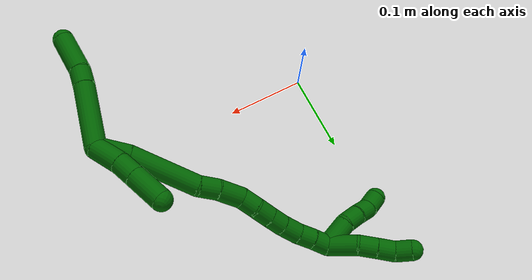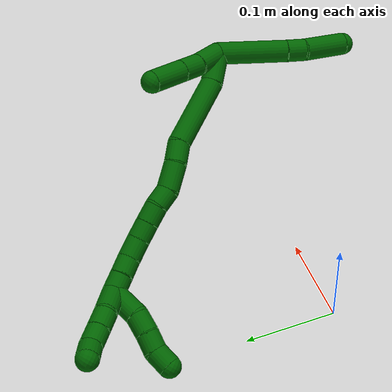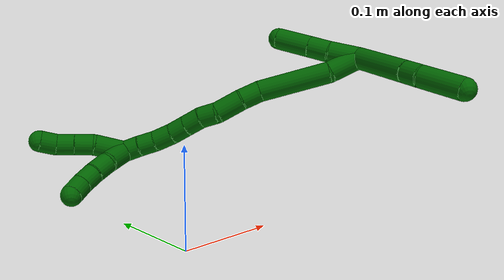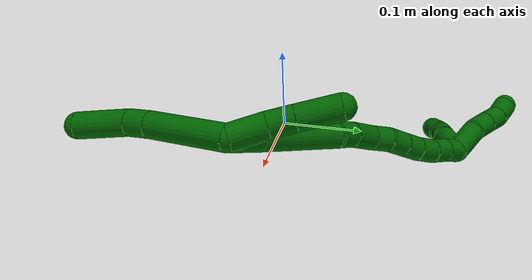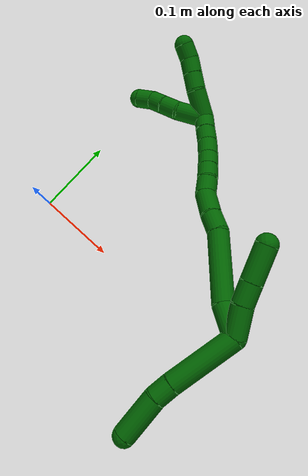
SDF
<sdf version="1.7">
 <world name="default">
  <model name="6">
   <static>0</static>
   <link name="6">
    <collision name="collision-cylinder-e_1_2_8">
     <pose>0.013841 -0.016713 -0.032857 2.67104 0.359188 1.29639</pose>
     <geometry><cylinder><radius>0.0125</radius><length>0.078753</length></cylinder></geometry>
     <surface>
      <friction><ode><mu>1.16</mu><mu2>1.16</mu2><slip1>0</slip1><slip2>0</slip2></ode></friction>
      <contact><ode><kp>1e+06</kp><kd>1</kd><max_vel>0</max_vel><min_depth>0.001</min_depth></ode></contact>
     </surface>
    </collision>
    <visual name="visual-cylinder-e_1_2_8">
     <pose>0.013841 -0.016713 -0.032857 2.67104 0.359188 1.29639</pose>
     <geometry><cylinder><radius>0.0125</radius><length>0.078753</length></cylinder></geometry>
     <material><ambient>0 0.392157 0.003922 1</ambient></material>
    </visual>
    <collision name="collision-cylinder-e_2_8_9">
     <pose>0.032161 -0.037617 -0.074525 2.69758 0.430263 1.53831</pose>
     <geometry><cylinder><radius>0.0125</radius><length>0.02147</length></cylinder></geometry>
     <surface>
      <friction><ode><mu>1.16</mu><mu2>1.16</mu2><slip1>0</slip1><slip2>0</slip2></ode></friction>
      <contact><ode><kp>1e+06</kp><kd>1</kd><max_vel>0</max_vel><min_depth>0.001</min_depth></ode></contact>
     </surface>
    </collision>
    <visual name="visual-cylinder-e_2_8_9">
     <pose>0.032161 -0.037617 -0.074525 2.69758 0.430263 1.53831</pose>
     <geometry><cylinder><radius>0.0125</radius><length>0.02147</length></cylinder></geometry>
     <material><ambient>0 0.392157 0.003922 1</ambient></material>
    </visual>
    <collision name="collision-cylinder-e_3_9_6">
     <pose>0.051114 -0.049249 -0.102164 2.76526 0.620751 2.07006</pose>
     <geometry><cylinder><radius>0.0125</radius><length>0.049777</length></cylinder></geometry>
     <surface>
      <friction><ode><mu>1.16</mu><mu2>1.16</mu2><slip1>0</slip1><slip2>0</slip2></ode></friction>
      <contact><ode><kp>1e+06</kp><kd>1</kd><max_vel>0</max_vel><min_depth>0.001</min_depth></ode></contact>
     </surface>
    </collision>
    <visual name="visual-cylinder-e_3_9_6">
     <pose>0.051114 -0.049249 -0.102164 2.76526 0.620751 2.07006</pose>
     <geometry><cylinder><radius>0.0125</radius><length>0.049777</length></cylinder></geometry>
     <material><ambient>0 0.392157 0.003922 1</ambient></material>
    </visual>
    <collision name="collision-cylinder-e_1_2_10">
     <pose>-0.015185 0.001934 0.008061 -0.235472 -1.0711 0.140148</pose>
     <geometry><cylinder><radius>0.0125</radius><length>0.034601</length></cylinder></geometry>
     <surface>
      <friction><ode><mu>1.16</mu><mu2>1.16</mu2><slip1>0</slip1><slip2>0</slip2></ode></friction>
      <contact><ode><kp>1e+06</kp><kd>1</kd><max_vel>0</max_vel><min_depth>0.001</min_depth></ode></contact>
     </surface>
    </collision>
    <visual name="visual-cylinder-e_1_2_10">
     <pose>-0.015185 0.001934 0.008061 -0.235472 -1.0711 0.140148</pose>
     <geometry><cylinder><radius>0.0125</radius><length>0.034601</length></cylinder></geometry>
     <material><ambient>0 0.392157 0.003922 1</ambient></material>
    </visual>
    <collision name="collision-cylinder-e_2_10_11">
     <pose>-0.04011 0.005812 0.023356 -0.262578 -0.91519 0.129874</pose>
     <geometry><cylinder><radius>0.0125</radius><length>0.024574</length></cylinder></geometry>
     <surface>
      <friction><ode><mu>1.16</mu><mu2>1.16</mu2><slip1>0</slip1><slip2>0</slip2></ode></friction>
      <contact><ode><kp>1e+06</kp><kd>1</kd><max_vel>0</max_vel><min_depth>0.001</min_depth></ode></contact>
     </surface>
    </collision>
    <visual name="visual-cylinder-e_2_10_11">
     <pose>-0.04011 0.005812 0.023356 -0.262578 -0.91519 0.129874</pose>
     <geometry><cylinder><radius>0.0125</radius><length>0.024574</length></cylinder></geometry>
     <material><ambient>0 0.392157 0.003922 1</ambient></material>
    </visual>
    <collision name="collision-cylinder-e_3_11_5">
     <pose>-0.065985 0.011121 0.042631 -0.272452 -0.911572 0.13419</pose>
     <geometry><cylinder><radius>0.0125</radius><length>0.040825</length></cylinder></geometry>
     <surface>
      <friction><ode><mu>1.16</mu><mu2>1.16</mu2><slip1>0</slip1><slip2>0</slip2></ode></friction>
      <contact><ode><kp>1e+06</kp><kd>1</kd><max_vel>0</max_vel><min_depth>0.001</min_depth></ode></contact>
     </surface>
    </collision>
    <visual name="visual-cylinder-e_3_11_5">
     <pose>-0.065985 0.011121 0.042631 -0.272452 -0.911572 0.13419</pose>
     <geometry><cylinder><radius>0.0125</radius><length>0.040825</length></cylinder></geometry>
     <material><ambient>0 0.392157 0.003922 1</ambient></material>
    </visual>
    <collision name="collision-cylinder-e_1_2_12">
     <pose>-0.016888 0.006942 -0.004345 -2.13003 -1.11927 1.69368</pose>
     <geometry><cylinder><radius>0.0125</radius><length>0.037537</length></cylinder></geometry>
     <surface>
      <friction><ode><mu>1.16</mu><mu2>1.16</mu2><slip1>0</slip1><slip2>0</slip2></ode></friction>
      <contact><ode><kp>1e+06</kp><kd>1</kd><max_vel>0</max_vel><min_depth>0.001</min_depth></ode></contact>
     </surface>
    </collision>
    <visual name="visual-cylinder-e_1_2_12">
     <pose>-0.016888 0.006942 -0.004345 -2.13003 -1.11927 1.69368</pose>
     <geometry><cylinder><radius>0.0125</radius><length>0.037537</length></cylinder></geometry>
     <material><ambient>0 0.392157 0.003922 1</ambient></material>
    </visual>
    <collision name="collision-cylinder-e_2_12_13">
     <pose>-0.072191 0.029753 -0.006827 -1.45394 -1.17664 1.07109</pose>
     <geometry><cylinder><radius>0.0125</radius><length>0.083213</length></cylinder></geometry>
     <surface>
      <friction><ode><mu>1.16</mu><mu2>1.16</mu2><slip1>0</slip1><slip2>0</slip2></ode></friction>
      <contact><ode><kp>1e+06</kp><kd>1</kd><max_vel>0</max_vel><min_depth>0.001</min_depth></ode></contact>
     </surface>
    </collision>
    <visual name="visual-cylinder-e_2_12_13">
     <pose>-0.072191 0.029753 -0.006827 -1.45394 -1.17664 1.07109</pose>
     <geometry><cylinder><radius>0.0125</radius><length>0.083213</length></cylinder></geometry>
     <material><ambient>0 0.392157 0.003922 1</ambient></material>
    </visual>
    <collision name="collision-cylinder-e_3_13_14">
     <pose>-0.121431 0.049512 -0.00785 -2.20912 -1.15001 1.82104</pose>
     <geometry><cylinder><radius>0.0125</radius><length>0.023716</length></cylinder></geometry>
     <surface>
      <friction><ode><mu>1.16</mu><mu2>1.16</mu2><slip1>0</slip1><slip2>0</slip2></ode></friction>
      <contact><ode><kp>1e+06</kp><kd>1</kd><max_vel>0</max_vel><min_depth>0.001</min_depth></ode></contact>
     </surface>
    </collision>
    <visual name="visual-cylinder-e_3_13_14">
     <pose>-0.121431 0.049512 -0.00785 -2.20912 -1.15001 1.82104</pose>
     <geometry><cylinder><radius>0.0125</radius><length>0.023716</length></cylinder></geometry>
     <material><ambient>0 0.392157 0.003922 1</ambient></material>
    </visual>
    <collision name="collision-cylinder-e_4_14_15">
     <pose>-0.14564 0.060717 -0.01367 -1.95228 -1.03862 1.40343</pose>
     <geometry><cylinder><radius>0.0125</radius><length>0.031066</length></cylinder></geometry>
     <surface>
      <friction><ode><mu>1.16</mu><mu2>1.16</mu2><slip1>0</slip1><slip2>0</slip2></ode></friction>
      <contact><ode><kp>1e+06</kp><kd>1</kd><max_vel>0</max_vel><min_depth>0.001</min_depth></ode></contact>
     </surface>
    </collision>
    <visual name="visual-cylinder-e_4_14_15">
     <pose>-0.14564 0.060717 -0.01367 -1.95228 -1.03862 1.40343</pose>
     <geometry><cylinder><radius>0.0125</radius><length>0.031066</length></cylinder></geometry>
     <material><ambient>0 0.392157 0.003922 1</ambient></material>
    </visual>
    <collision name="collision-cylinder-e_5_15_16">
     <pose>-0.167934 0.073181 -0.015004 -1.26936 -1.02658 0.786811</pose>
     <geometry><cylinder><radius>0.0125</radius><length>0.020829</length></cylinder></geometry>
     <surface>
      <friction><ode><mu>1.16</mu><mu2>1.16</mu2><slip1>0</slip1><slip2>0</slip2></ode></friction>
      <contact><ode><kp>1e+06</kp><kd>1</kd><max_vel>0</max_vel><min_depth>0.001</min_depth></ode></contact>
     </surface>
    </collision>
    <visual name="visual-cylinder-e_5_15_16">
     <pose>-0.167934 0.073181 -0.015004 -1.26936 -1.02658 0.786811</pose>
     <geometry><cylinder><radius>0.0125</radius><length>0.020829</length></cylinder></geometry>
     <material><ambient>0 0.392157 0.003922 1</ambient></material>
    </visual>
    <collision name="collision-cylinder-e_6_16_17">
     <pose>-0.184911 0.084642 -0.013484 -1.5837 -0.906851 0.917051</pose>
     <geometry><cylinder><radius>0.0125</radius><length>0.020487</length></cylinder></geometry>
     <surface>
      <friction><ode><mu>1.16</mu><mu2>1.16</mu2><slip1>0</slip1><slip2>0</slip2></ode></friction>
      <contact><ode><kp>1e+06</kp><kd>1</kd><max_vel>0</max_vel><min_depth>0.001</min_depth></ode></contact>
     </surface>
    </collision>
    <visual name="visual-cylinder-e_6_16_17">
     <pose>-0.184911 0.084642 -0.013484 -1.5837 -0.906851 0.917051</pose>
     <geometry><cylinder><radius>0.0125</radius><length>0.020487</length></cylinder></geometry>
     <material><ambient>0 0.392157 0.003922 1</ambient></material>
    </visual>
    <collision name="collision-cylinder-e_7_17_18">
     <pose>-0.200974 0.097064 -0.01379 -1.60754 -0.917923 0.94744</pose>
     <geometry><cylinder><radius>0.0125</radius><length>0.020131</length></cylinder></geometry>
     <surface>
      <friction><ode><mu>1.16</mu><mu2>1.16</mu2><slip1>0</slip1><slip2>0</slip2></ode></friction>
      <contact><ode><kp>1e+06</kp><kd>1</kd><max_vel>0</max_vel><min_depth>0.001</min_depth></ode></contact>
     </surface>
    </collision>
    <visual name="visual-cylinder-e_7_17_18">
     <pose>-0.200974 0.097064 -0.01379 -1.60754 -0.917923 0.94744</pose>
     <geometry><cylinder><radius>0.0125</radius><length>0.020131</length></cylinder></geometry>
     <material><ambient>0 0.392157 0.003922 1</ambient></material>
    </visual>
    <collision name="collision-cylinder-e_8_18_19">
     <pose>-0.218792 0.109027 -0.014216 -1.60512 -1.03315 1.0629</pose>
     <geometry><cylinder><radius>0.0125</radius><length>0.022872</length></cylinder></geometry>
     <surface>
      <friction><ode><mu>1.16</mu><mu2>1.16</mu2><slip1>0</slip1><slip2>0</slip2></ode></friction>
      <contact><ode><kp>1e+06</kp><kd>1</kd><max_vel>0</max_vel><min_depth>0.001</min_depth></ode></contact>
     </surface>
    </collision>
    <visual name="visual-cylinder-e_8_18_19">
     <pose>-0.218792 0.109027 -0.014216 -1.60512 -1.03315 1.0629</pose>
     <geometry><cylinder><radius>0.0125</radius><length>0.022872</length></cylinder></geometry>
     <material><ambient>0 0.392157 0.003922 1</ambient></material>
    </visual>
    <collision name="collision-cylinder-e_9_19_20">
     <pose>-0.237932 0.118586 -0.014675 -1.64032 -1.1914 1.25683</pose>
     <geometry><cylinder><radius>0.0125</radius><length>0.020061</length></cylinder></geometry>
     <surface>
      <friction><ode><mu>1.16</mu><mu2>1.16</mu2><slip1>0</slip1><slip2>0</slip2></ode></friction>
      <contact><ode><kp>1e+06</kp><kd>1</kd><max_vel>0</max_vel><min_depth>0.001</min_depth></ode></contact>
     </surface>
    </collision>
    <visual name="visual-cylinder-e_9_19_20">
     <pose>-0.237932 0.118586 -0.014675 -1.64032 -1.1914 1.25683</pose>
     <geometry><cylinder><radius>0.0125</radius><length>0.020061</length></cylinder></geometry>
     <material><ambient>0 0.392157 0.003922 1</ambient></material>
    </visual>
    <collision name="collision-cylinder-e_10_20_1">
     <pose>-0.256297 0.126646 -0.015181 -1.62774 -1.12167 1.17362</pose>
     <geometry><cylinder><radius>0.0125</radius><length>0.020088</length></cylinder></geometry>
     <surface>
      <friction><ode><mu>1.16</mu><mu2>1.16</mu2><slip1>0</slip1><slip2>0</slip2></ode></friction>
      <contact><ode><kp>1e+06</kp><kd>1</kd><max_vel>0</max_vel><min_depth>0.001</min_depth></ode></contact>
     </surface>
    </collision>
    <visual name="visual-cylinder-e_10_20_1">
     <pose>-0.256297 0.126646 -0.015181 -1.62774 -1.12167 1.17362</pose>
     <geometry><cylinder><radius>0.0125</radius><length>0.020088</length></cylinder></geometry>
     <material><ambient>0 0.392157 0.003922 1</ambient></material>
    </visual>
    <collision name="collision-cylinder-e_1_1_21">
     <pose>-0.283029 0.126435 -0.0138 1.22782 -1.30328 -0.986523</pose>
     <geometry><cylinder><radius>0.0125</radius><length>0.036671</length></cylinder></geometry>
     <surface>
      <friction><ode><mu>1.16</mu><mu2>1.16</mu2><slip1>0</slip1><slip2>0</slip2></ode></friction>
      <contact><ode><kp>1e+06</kp><kd>1</kd><max_vel>0</max_vel><min_depth>0.001</min_depth></ode></contact>
     </surface>
    </collision>
    <visual name="visual-cylinder-e_1_1_21">
     <pose>-0.283029 0.126435 -0.0138 1.22782 -1.30328 -0.986523</pose>
     <geometry><cylinder><radius>0.0125</radius><length>0.036671</length></cylinder></geometry>
     <material><ambient>0 0.392157 0.003922 1</ambient></material>
    </visual>
    <collision name="collision-cylinder-e_2_21_22">
     <pose>-0.311693 0.122131 -0.011508 -0.375217 -1.50615 0.35221</pose>
     <geometry><cylinder><radius>0.0125</radius><length>0.022006</length></cylinder></geometry>
     <surface>
      <friction><ode><mu>1.16</mu><mu2>1.16</mu2><slip1>0</slip1><slip2>0</slip2></ode></friction>
      <contact><ode><kp>1e+06</kp><kd>1</kd><max_vel>0</max_vel><min_depth>0.001</min_depth></ode></contact>
     </surface>
    </collision>
    <visual name="visual-cylinder-e_2_21_22">
     <pose>-0.311693 0.122131 -0.011508 -0.375217 -1.50615 0.35221</pose>
     <geometry><cylinder><radius>0.0125</radius><length>0.022006</length></cylinder></geometry>
     <material><ambient>0 0.392157 0.003922 1</ambient></material>
    </visual>
    <collision name="collision-cylinder-e_3_22_23">
     <pose>-0.333293 0.12291 -0.010225 -0.694564 -1.4947 0.647228</pose>
     <geometry><cylinder><radius>0.0125</radius><length>0.021301</length></cylinder></geometry>
     <surface>
      <friction><ode><mu>1.16</mu><mu2>1.16</mu2><slip1>0</slip1><slip2>0</slip2></ode></friction>
      <contact><ode><kp>1e+06</kp><kd>1</kd><max_vel>0</max_vel><min_depth>0.001</min_depth></ode></contact>
     </surface>
    </collision>
    <visual name="visual-cylinder-e_3_22_23">
     <pose>-0.333293 0.12291 -0.010225 -0.694564 -1.4947 0.647228</pose>
     <geometry><cylinder><radius>0.0125</radius><length>0.021301</length></cylinder></geometry>
     <material><ambient>0 0.392157 0.003922 1</ambient></material>
    </visual>
    <collision name="collision-cylinder-e_4_23_4">
     <pose>-0.3535 0.120555 -0.009434 1.51199 -1.27921 -1.22336</pose>
     <geometry><cylinder><radius>0.0125</radius><length>0.020021</length></cylinder></geometry>
     <surface>
      <friction><ode><mu>1.16</mu><mu2>1.16</mu2><slip1>0</slip1><slip2>0</slip2></ode></friction>
      <contact><ode><kp>1e+06</kp><kd>1</kd><max_vel>0</max_vel><min_depth>0.001</min_depth></ode></contact>
     </surface>
    </collision>
    <visual name="visual-cylinder-e_4_23_4">
     <pose>-0.3535 0.120555 -0.009434 1.51199 -1.27921 -1.22336</pose>
     <geometry><cylinder><radius>0.0125</radius><length>0.020021</length></cylinder></geometry>
     <material><ambient>0 0.392157 0.003922 1</ambient></material>
    </visual>
    <collision name="collision-cylinder-e_1_1_24">
     <pose>-0.275339 0.125311 -0.029638 2.76074 -0.578432 -1.99192</pose>
     <geometry><cylinder><radius>0.0125</radius><length>0.036557</length></cylinder></geometry>
     <surface>
      <friction><ode><mu>1.16</mu><mu2>1.16</mu2><slip1>0</slip1><slip2>0</slip2></ode></friction>
      <contact><ode><kp>1e+06</kp><kd>1</kd><max_vel>0</max_vel><min_depth>0.001</min_depth></ode></contact>
     </surface>
    </collision>
    <visual name="visual-cylinder-e_1_1_24">
     <pose>-0.275339 0.125311 -0.029638 2.76074 -0.578432 -1.99192</pose>
     <geometry><cylinder><radius>0.0125</radius><length>0.036557</length></cylinder></geometry>
     <material><ambient>0 0.392157 0.003922 1</ambient></material>
    </visual>
    <collision name="collision-cylinder-e_2_24_25">
     <pose>-0.292808 0.119246 -0.052111 3.09614 -0.734882 -3.02364</pose>
     <geometry><cylinder><radius>0.0125</radius><length>0.022302</length></cylinder></geometry>
     <surface>
      <friction><ode><mu>1.16</mu><mu2>1.16</mu2><slip1>0</slip1><slip2>0</slip2></ode></friction>
      <contact><ode><kp>1e+06</kp><kd>1</kd><max_vel>0</max_vel><min_depth>0.001</min_depth></ode></contact>
     </surface>
    </collision>
    <visual name="visual-cylinder-e_2_24_25">
     <pose>-0.292808 0.119246 -0.052111 3.09614 -0.734882 -3.02364</pose>
     <geometry><cylinder><radius>0.0125</radius><length>0.022302</length></cylinder></geometry>
     <material><ambient>0 0.392157 0.003922 1</ambient></material>
    </visual>
    <collision name="collision-cylinder-e_3_25_26">
     <pose>-0.307028 0.119827 -0.067877 -3.01472 -0.728158 2.81125</pose>
     <geometry><cylinder><radius>0.0125</radius><length>0.020264</length></cylinder></geometry>
     <surface>
      <friction><ode><mu>1.16</mu><mu2>1.16</mu2><slip1>0</slip1><slip2>0</slip2></ode></friction>
      <contact><ode><kp>1e+06</kp><kd>1</kd><max_vel>0</max_vel><min_depth>0.001</min_depth></ode></contact>
     </surface>
    </collision>
    <visual name="visual-cylinder-e_3_25_26">
     <pose>-0.307028 0.119827 -0.067877 -3.01472 -0.728158 2.81125</pose>
     <geometry><cylinder><radius>0.0125</radius><length>0.020264</length></cylinder></geometry>
     <material><ambient>0 0.392157 0.003922 1</ambient></material>
    </visual>
    <collision name="collision-cylinder-e_4_26_3">
     <pose>-0.318786 0.119427 -0.084432 2.9929 -0.501159 -2.57524</pose>
     <geometry><cylinder><radius>0.0125</radius><length>0.020877</length></cylinder></geometry>
     <surface>
      <friction><ode><mu>1.16</mu><mu2>1.16</mu2><slip1>0</slip1><slip2>0</slip2></ode></friction>
      <contact><ode><kp>1e+06</kp><kd>1</kd><max_vel>0</max_vel><min_depth>0.001</min_depth></ode></contact>
     </surface>
    </collision>
    <visual name="visual-cylinder-e_4_26_3">
     <pose>-0.318786 0.119427 -0.084432 2.9929 -0.501159 -2.57524</pose>
     <geometry><cylinder><radius>0.0125</radius><length>0.020877</length></cylinder></geometry>
     <material><ambient>0 0.392157 0.003922 1</ambient></material>
    </visual>
    <collision name="collision-sphere-3">
     <pose>-0.323801 0.118071 -0.093486 0 -0 0</pose>
     <geometry><sphere><radius>0.0125</radius></sphere></geometry>
     <surface>
      <friction><ode><mu>1.16</mu><mu2>1.16</mu2><slip1>0</slip1><slip2>0</slip2></ode></friction>
      <contact><ode><kp>1e+06</kp><kd>1</kd><max_vel>0</max_vel><min_depth>0.001</min_depth></ode></contact>
     </surface>
    </collision>
    <visual name="visual-sphere-3">
     <pose>-0.323801 0.118071 -0.093486 0 -0 0</pose>
     <geometry><sphere><radius>0.0125</radius></sphere></geometry>
     <material><ambient>0 0.392157 0.003922 1</ambient></material>
    </visual>
    <collision name="collision-sphere-26">
     <pose>-0.313771 0.120784 -0.075379 0 -0 0</pose>
     <geometry><sphere><radius>0.0125</radius></sphere></geometry>
     <surface>
      <friction><ode><mu>1.16</mu><mu2>1.16</mu2><slip1>0</slip1><slip2>0</slip2></ode></friction>
      <contact><ode><kp>1e+06</kp><kd>1</kd><max_vel>0</max_vel><min_depth>0.001</min_depth></ode></contact>
     </surface>
    </collision>
    <visual name="visual-sphere-26">
     <pose>-0.313771 0.120784 -0.075379 0 -0 0</pose>
     <geometry><sphere><radius>0.0125</radius></sphere></geometry>
     <material><ambient>0 0.392157 0.003922 1</ambient></material>
    </visual>
    <collision name="collision-sphere-25">
     <pose>-0.300285 0.11887 -0.060375 0 -0 0</pose>
     <geometry><sphere><radius>0.0125</radius></sphere></geometry>
     <surface>
      <friction><ode><mu>1.16</mu><mu2>1.16</mu2><slip1>0</slip1><slip2>0</slip2></ode></friction>
      <contact><ode><kp>1e+06</kp><kd>1</kd><max_vel>0</max_vel><min_depth>0.001</min_depth></ode></contact>
     </surface>
    </collision>
    <visual name="visual-sphere-25">
     <pose>-0.300285 0.11887 -0.060375 0 -0 0</pose>
     <geometry><sphere><radius>0.0125</radius></sphere></geometry>
     <material><ambient>0 0.392157 0.003922 1</ambient></material>
    </visual>
    <collision name="collision-sphere-24">
     <pose>-0.285332 0.119622 -0.043846 0 -0 0</pose>
     <geometry><sphere><radius>0.0125</radius></sphere></geometry>
     <surface>
      <friction><ode><mu>1.16</mu><mu2>1.16</mu2><slip1>0</slip1><slip2>0</slip2></ode></friction>
      <contact><ode><kp>1e+06</kp><kd>1</kd><max_vel>0</max_vel><min_depth>0.001</min_depth></ode></contact>
     </surface>
    </collision>
    <visual name="visual-sphere-24">
     <pose>-0.285332 0.119622 -0.043846 0 -0 0</pose>
     <geometry><sphere><radius>0.0125</radius></sphere></geometry>
     <material><ambient>0 0.392157 0.003922 1</ambient></material>
    </visual>
    <collision name="collision-sphere-4">
     <pose>-0.363088 0.117683 -0.009264 0 -0 0</pose>
     <geometry><sphere><radius>0.0125</radius></sphere></geometry>
     <surface>
      <friction><ode><mu>1.16</mu><mu2>1.16</mu2><slip1>0</slip1><slip2>0</slip2></ode></friction>
      <contact><ode><kp>1e+06</kp><kd>1</kd><max_vel>0</max_vel><min_depth>0.001</min_depth></ode></contact>
     </surface>
    </collision>
    <visual name="visual-sphere-4">
     <pose>-0.363088 0.117683 -0.009264 0 -0 0</pose>
     <geometry><sphere><radius>0.0125</radius></sphere></geometry>
     <material><ambient>0 0.392157 0.003922 1</ambient></material>
    </visual>
    <collision name="collision-sphere-23">
     <pose>-0.343912 0.123428 -0.009603 0 -0 0</pose>
     <geometry><sphere><radius>0.0125</radius></sphere></geometry>
     <surface>
      <friction><ode><mu>1.16</mu><mu2>1.16</mu2><slip1>0</slip1><slip2>0</slip2></ode></friction>
      <contact><ode><kp>1e+06</kp><kd>1</kd><max_vel>0</max_vel><min_depth>0.001</min_depth></ode></contact>
     </surface>
    </collision>
    <visual name="visual-sphere-23">
     <pose>-0.343912 0.123428 -0.009603 0 -0 0</pose>
     <geometry><sphere><radius>0.0125</radius></sphere></geometry>
     <material><ambient>0 0.392157 0.003922 1</ambient></material>
    </visual>
    <collision name="collision-sphere-22">
     <pose>-0.322673 0.122392 -0.010847 0 -0 0</pose>
     <geometry><sphere><radius>0.0125</radius></sphere></geometry>
     <surface>
      <friction><ode><mu>1.16</mu><mu2>1.16</mu2><slip1>0</slip1><slip2>0</slip2></ode></friction>
      <contact><ode><kp>1e+06</kp><kd>1</kd><max_vel>0</max_vel><min_depth>0.001</min_depth></ode></contact>
     </surface>
    </collision>
    <visual name="visual-sphere-22">
     <pose>-0.322673 0.122392 -0.010847 0 -0 0</pose>
     <geometry><sphere><radius>0.0125</radius></sphere></geometry>
     <material><ambient>0 0.392157 0.003922 1</ambient></material>
    </visual>
    <collision name="collision-sphere-21">
     <pose>-0.300712 0.121871 -0.01217 0 -0 0</pose>
     <geometry><sphere><radius>0.0125</radius></sphere></geometry>
     <surface>
      <friction><ode><mu>1.16</mu><mu2>1.16</mu2><slip1>0</slip1><slip2>0</slip2></ode></friction>
      <contact><ode><kp>1e+06</kp><kd>1</kd><max_vel>0</max_vel><min_depth>0.001</min_depth></ode></contact>
     </surface>
    </collision>
    <visual name="visual-sphere-21">
     <pose>-0.300712 0.121871 -0.01217 0 -0 0</pose>
     <geometry><sphere><radius>0.0125</radius></sphere></geometry>
     <material><ambient>0 0.392157 0.003922 1</ambient></material>
    </visual>
    <collision name="collision-sphere-1">
     <pose>-0.265346 0.131 -0.01543 0 -0 0</pose>
     <geometry><sphere><radius>0.0125</radius></sphere></geometry>
     <surface>
      <friction><ode><mu>1.16</mu><mu2>1.16</mu2><slip1>0</slip1><slip2>0</slip2></ode></friction>
      <contact><ode><kp>1e+06</kp><kd>1</kd><max_vel>0</max_vel><min_depth>0.001</min_depth></ode></contact>
     </surface>
    </collision>
    <visual name="visual-sphere-1">
     <pose>-0.265346 0.131 -0.01543 0 -0 0</pose>
     <geometry><sphere><radius>0.0125</radius></sphere></geometry>
     <material><ambient>0 0.392157 0.003922 1</ambient></material>
    </visual>
    <collision name="collision-sphere-11">
     <pose>-0.04985 0.007757 0.03059 0 -0 0</pose>
     <geometry><sphere><radius>0.0125</radius></sphere></geometry>
     <surface>
      <friction><ode><mu>1.16</mu><mu2>1.16</mu2><slip1>0</slip1><slip2>0</slip2></ode></friction>
      <contact><ode><kp>1e+06</kp><kd>1</kd><max_vel>0</max_vel><min_depth>0.001</min_depth></ode></contact>
     </surface>
    </collision>
    <visual name="visual-sphere-11">
     <pose>-0.04985 0.007757 0.03059 0 -0 0</pose>
     <geometry><sphere><radius>0.0125</radius></sphere></geometry>
     <material><ambient>0 0.392157 0.003922 1</ambient></material>
    </visual>
    <collision name="collision-sphere-10">
     <pose>-0.03037 0.003868 0.016122 0 -0 0</pose>
     <geometry><sphere><radius>0.0125</radius></sphere></geometry>
     <surface>
      <friction><ode><mu>1.16</mu><mu2>1.16</mu2><slip1>0</slip1><slip2>0</slip2></ode></friction>
      <contact><ode><kp>1e+06</kp><kd>1</kd><max_vel>0</max_vel><min_depth>0.001</min_depth></ode></contact>
     </surface>
    </collision>
    <visual name="visual-sphere-10">
     <pose>-0.03037 0.003868 0.016122 0 -0 0</pose>
     <geometry><sphere><radius>0.0125</radius></sphere></geometry>
     <material><ambient>0 0.392157 0.003922 1</ambient></material>
    </visual>
    <collision name="collision-sphere-6">
     <pose>0.065591 -0.056689 -0.120993 0 -0 0</pose>
     <geometry><sphere><radius>0.0125</radius></sphere></geometry>
     <surface>
      <friction><ode><mu>1.16</mu><mu2>1.16</mu2><slip1>0</slip1><slip2>0</slip2></ode></friction>
      <contact><ode><kp>1e+06</kp><kd>1</kd><max_vel>0</max_vel><min_depth>0.001</min_depth></ode></contact>
     </surface>
    </collision>
    <visual name="visual-sphere-6">
     <pose>0.065591 -0.056689 -0.120993 0 -0 0</pose>
     <geometry><sphere><radius>0.0125</radius></sphere></geometry>
     <material><ambient>0 0.392157 0.003922 1</ambient></material>
    </visual>
    <collision name="collision-sphere-9">
     <pose>0.036638 -0.041808 -0.083336 0 -0 0</pose>
     <geometry><sphere><radius>0.0125</radius></sphere></geometry>
     <surface>
      <friction><ode><mu>1.16</mu><mu2>1.16</mu2><slip1>0</slip1><slip2>0</slip2></ode></friction>
      <contact><ode><kp>1e+06</kp><kd>1</kd><max_vel>0</max_vel><min_depth>0.001</min_depth></ode></contact>
     </surface>
    </collision>
    <visual name="visual-sphere-9">
     <pose>0.036638 -0.041808 -0.083336 0 -0 0</pose>
     <geometry><sphere><radius>0.0125</radius></sphere></geometry>
     <material><ambient>0 0.392157 0.003922 1</ambient></material>
    </visual>
    <collision name="collision-sphere-2">
     <geometry><sphere><radius>0.0125</radius></sphere></geometry>
     <surface>
      <friction><ode><mu>1.16</mu><mu2>1.16</mu2><slip1>0</slip1><slip2>0</slip2></ode></friction>
      <contact><ode><kp>1e+06</kp><kd>1</kd><max_vel>0</max_vel><min_depth>0.001</min_depth></ode></contact>
     </surface>
    </collision>
    <visual name="visual-sphere-2">
     <geometry><sphere><radius>0.0125</radius></sphere></geometry>
     <material><ambient>0 0.392157 0.003922 1</ambient></material>
    </visual>
    <collision name="collision-sphere-19">
     <pose>-0.228615 0.11488 -0.014417 0 -0 0</pose>
     <geometry><sphere><radius>0.0125</radius></sphere></geometry>
     <surface>
      <friction><ode><mu>1.16</mu><mu2>1.16</mu2><slip1>0</slip1><slip2>0</slip2></ode></friction>
      <contact><ode><kp>1e+06</kp><kd>1</kd><max_vel>0</max_vel><min_depth>0.001</min_depth></ode></contact>
     </surface>
    </collision>
    <visual name="visual-sphere-19">
     <pose>-0.228615 0.11488 -0.014417 0 -0 0</pose>
     <geometry><sphere><radius>0.0125</radius></sphere></geometry>
     <material><ambient>0 0.392157 0.003922 1</ambient></material>
    </visual>
    <collision name="collision-sphere-8">
     <pose>0.027683 -0.033426 -0.065715 0 -0 0</pose>
     <geometry><sphere><radius>0.0125</radius></sphere></geometry>
     <surface>
      <friction><ode><mu>1.16</mu><mu2>1.16</mu2><slip1>0</slip1><slip2>0</slip2></ode></friction>
      <contact><ode><kp>1e+06</kp><kd>1</kd><max_vel>0</max_vel><min_depth>0.001</min_depth></ode></contact>
     </surface>
    </collision>
    <visual name="visual-sphere-8">
     <pose>0.027683 -0.033426 -0.065715 0 -0 0</pose>
     <geometry><sphere><radius>0.0125</radius></sphere></geometry>
     <material><ambient>0 0.392157 0.003922 1</ambient></material>
    </visual>
    <collision name="collision-sphere-5">
     <pose>-0.08212 0.014486 0.054673 0 -0 0</pose>
     <geometry><sphere><radius>0.0125</radius></sphere></geometry>
     <surface>
      <friction><ode><mu>1.16</mu><mu2>1.16</mu2><slip1>0</slip1><slip2>0</slip2></ode></friction>
      <contact><ode><kp>1e+06</kp><kd>1</kd><max_vel>0</max_vel><min_depth>0.001</min_depth></ode></contact>
     </surface>
    </collision>
    <visual name="visual-sphere-5">
     <pose>-0.08212 0.014486 0.054673 0 -0 0</pose>
     <geometry><sphere><radius>0.0125</radius></sphere></geometry>
     <material><ambient>0 0.392157 0.003922 1</ambient></material>
    </visual>
    <collision name="collision-sphere-12">
     <pose>-0.033775 0.013884 -0.00869 0 -0 0</pose>
     <geometry><sphere><radius>0.0125</radius></sphere></geometry>
     <surface>
      <friction><ode><mu>1.16</mu><mu2>1.16</mu2><slip1>0</slip1><slip2>0</slip2></ode></friction>
      <contact><ode><kp>1e+06</kp><kd>1</kd><max_vel>0</max_vel><min_depth>0.001</min_depth></ode></contact>
     </surface>
    </collision>
    <visual name="visual-sphere-12">
     <pose>-0.033775 0.013884 -0.00869 0 -0 0</pose>
     <geometry><sphere><radius>0.0125</radius></sphere></geometry>
     <material><ambient>0 0.392157 0.003922 1</ambient></material>
    </visual>
    <collision name="collision-sphere-13">
     <pose>-0.110608 0.045622 -0.004964 0 -0 0</pose>
     <geometry><sphere><radius>0.0125</radius></sphere></geometry>
     <surface>
      <friction><ode><mu>1.16</mu><mu2>1.16</mu2><slip1>0</slip1><slip2>0</slip2></ode></friction>
      <contact><ode><kp>1e+06</kp><kd>1</kd><max_vel>0</max_vel><min_depth>0.001</min_depth></ode></contact>
     </surface>
    </collision>
    <visual name="visual-sphere-13">
     <pose>-0.110608 0.045622 -0.004964 0 -0 0</pose>
     <geometry><sphere><radius>0.0125</radius></sphere></geometry>
     <material><ambient>0 0.392157 0.003922 1</ambient></material>
    </visual>
    <collision name="collision-sphere-14">
     <pose>-0.132255 0.053402 -0.010736 0 -0 0</pose>
     <geometry><sphere><radius>0.0125</radius></sphere></geometry>
     <surface>
      <friction><ode><mu>1.16</mu><mu2>1.16</mu2><slip1>0</slip1><slip2>0</slip2></ode></friction>
      <contact><ode><kp>1e+06</kp><kd>1</kd><max_vel>0</max_vel><min_depth>0.001</min_depth></ode></contact>
     </surface>
    </collision>
    <visual name="visual-sphere-14">
     <pose>-0.132255 0.053402 -0.010736 0 -0 0</pose>
     <geometry><sphere><radius>0.0125</radius></sphere></geometry>
     <material><ambient>0 0.392157 0.003922 1</ambient></material>
    </visual>
    <collision name="collision-sphere-15">
     <pose>-0.159025 0.068032 -0.016605 0 -0 0</pose>
     <geometry><sphere><radius>0.0125</radius></sphere></geometry>
     <surface>
      <friction><ode><mu>1.16</mu><mu2>1.16</mu2><slip1>0</slip1><slip2>0</slip2></ode></friction>
      <contact><ode><kp>1e+06</kp><kd>1</kd><max_vel>0</max_vel><min_depth>0.001</min_depth></ode></contact>
     </surface>
    </collision>
    <visual name="visual-sphere-15">
     <pose>-0.159025 0.068032 -0.016605 0 -0 0</pose>
     <geometry><sphere><radius>0.0125</radius></sphere></geometry>
     <material><ambient>0 0.392157 0.003922 1</ambient></material>
    </visual>
    <collision name="collision-sphere-16">
     <pose>-0.176844 0.07833 -0.013403 0 -0 0</pose>
     <geometry><sphere><radius>0.0125</radius></sphere></geometry>
     <surface>
      <friction><ode><mu>1.16</mu><mu2>1.16</mu2><slip1>0</slip1><slip2>0</slip2></ode></friction>
      <contact><ode><kp>1e+06</kp><kd>1</kd><max_vel>0</max_vel><min_depth>0.001</min_depth></ode></contact>
     </surface>
    </collision>
    <visual name="visual-sphere-16">
     <pose>-0.176844 0.07833 -0.013403 0 -0 0</pose>
     <geometry><sphere><radius>0.0125</radius></sphere></geometry>
     <material><ambient>0 0.392157 0.003922 1</ambient></material>
    </visual>
    <collision name="collision-sphere-17">
     <pose>-0.192979 0.090953 -0.013566 0 -0 0</pose>
     <geometry><sphere><radius>0.0125</radius></sphere></geometry>
     <surface>
      <friction><ode><mu>1.16</mu><mu2>1.16</mu2><slip1>0</slip1><slip2>0</slip2></ode></friction>
      <contact><ode><kp>1e+06</kp><kd>1</kd><max_vel>0</max_vel><min_depth>0.001</min_depth></ode></contact>
     </surface>
    </collision>
    <visual name="visual-sphere-17">
     <pose>-0.192979 0.090953 -0.013566 0 -0 0</pose>
     <geometry><sphere><radius>0.0125</radius></sphere></geometry>
     <material><ambient>0 0.392157 0.003922 1</ambient></material>
    </visual>
    <collision name="collision-sphere-18">
     <pose>-0.20897 0.103174 -0.014015 0 -0 0</pose>
     <geometry><sphere><radius>0.0125</radius></sphere></geometry>
     <surface>
      <friction><ode><mu>1.16</mu><mu2>1.16</mu2><slip1>0</slip1><slip2>0</slip2></ode></friction>
      <contact><ode><kp>1e+06</kp><kd>1</kd><max_vel>0</max_vel><min_depth>0.001</min_depth></ode></contact>
     </surface>
    </collision>
    <visual name="visual-sphere-18">
     <pose>-0.20897 0.103174 -0.014015 0 -0 0</pose>
     <geometry><sphere><radius>0.0125</radius></sphere></geometry>
     <material><ambient>0 0.392157 0.003922 1</ambient></material>
    </visual>
    <collision name="collision-sphere-20">
     <pose>-0.247249 0.122292 -0.014933 0 -0 0</pose>
     <geometry><sphere><radius>0.0125</radius></sphere></geometry>
     <surface>
      <friction><ode><mu>1.16</mu><mu2>1.16</mu2><slip1>0</slip1><slip2>0</slip2></ode></friction>
      <contact><ode><kp>1e+06</kp><kd>1</kd><max_vel>0</max_vel><min_depth>0.001</min_depth></ode></contact>
     </surface>
    </collision>
    <visual name="visual-sphere-20">
     <pose>-0.247249 0.122292 -0.014933 0 -0 0</pose>
     <geometry><sphere><radius>0.0125</radius></sphere></geometry>
     <material><ambient>0 0.392157 0.003922 1</ambient></material>
    </visual>
    <inertial>
     <pose>-0.134762 0.052043 -0.021817 0 -0 0</pose>
     <mass>0.75</mass>
     <inertia><ixx>5.9e-05</ixx><ixy>0</ixy><ixz>0</ixz><iyy>0.000172</iyy><iyz>0</iyz><izz>5.4e-05</izz></inertia>
    </inertial>
   </link>
   <pose>0.27663 0.02543 0.15282 -1.02234 0.024859 -0.575763</pose>
  </model>
 </world>
</sdf>
